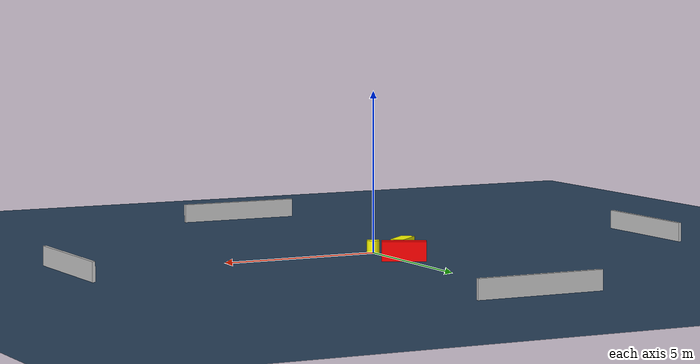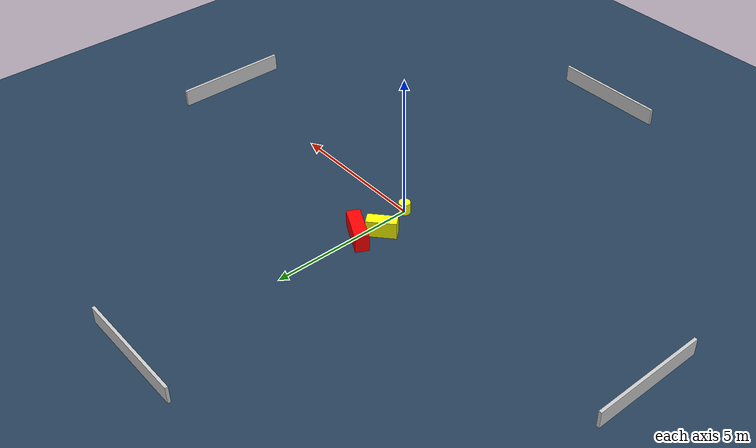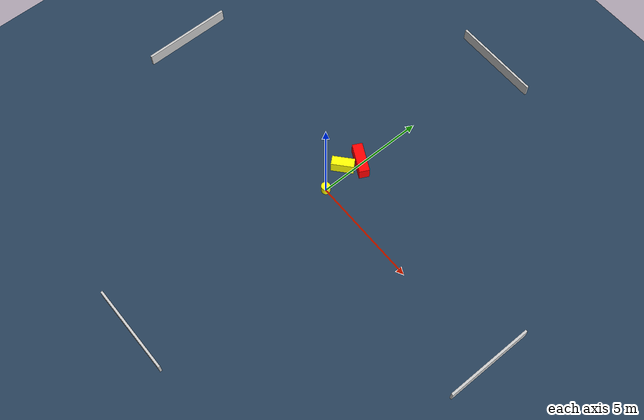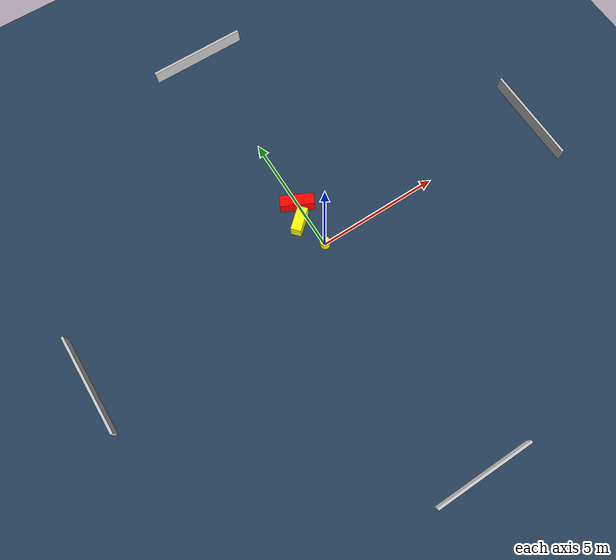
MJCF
<?xml version="1.0" ?>
<mujoco model="generated_environment">
  <option timestep="0.01" integrator="RK4" cone="elliptic"/>
  <default>
    <geom density="1"/>
  </default>
  <asset>
    <texture builtin="gradient" height="3072" name="skybox" rgb1="0.3 0.5 0.7" rgb2="0 0 0" type="skybox" width="512"/>
    <texture builtin="checker" height="300" name="groundplane" rgb1="0.2 0.3 0.4" rgb2="0.1 0.2 0.3" type="2d" width="300"/>
    <material name="groundplane" reflectance="0.2" texrepeat="5 5" texture="groundplane"/>
  </asset>
  <worldbody>
    <light dir="0 0 -1" directional="true" pos="0 0 1.5"/>
    <geom condim="3" friction="0.5 0.005 0.001" material="groundplane" name="floor" pos="0 0 0" size="0 0 0.05" type="plane"/>
    <body name="walls">
      <geom name="wall_1" condim="4" pos="-10.0 0.0 0.3" rgba="0.800000011920929 0.800000011920929 0.800000011920929 1.0" size="0.05 2.0 0.3" type="box"/>
      <geom name="wall_2" condim="4" pos="10.0 0.0 0.3" rgba="0.800000011920929 0.800000011920929 0.800000011920929 1.0" size="0.05 2.0 0.3" type="box"/>
      <geom name="wall_3" condim="4" pos="0.0 -10.0 0.3" rgba="0.800000011920929 0.800000011920929 0.800000011920929 1.0" size="2.0 0.05 0.3" type="box"/>
      <geom name="wall_4" condim="4" pos="0.0 10.0 0.3" rgba="0.800000011920929 0.800000011920929 0.800000011920929 1.0" size="2.0 0.05 0.3" type="box"/>
    </body>
    <body name="robot">
      <joint name="joint_x" type="slide" pos="0 0 0" axis="1 0 0"/>
      <joint name="joint_y" type="slide" pos="0 0 0" axis="0 1 0"/>
      <geom name="robot" type="cylinder" pos="0.0 0.0 0.2" size="0.2 0.2 0.0" mass="5.0" friction="1.0 0.005 0.0001" condim="4" rgba="1.0 1.0 0.0 1.0"/>
    </body>
    <body name="obstacle_1_movable">
      <geom name="obstacle_1_movable" condim="4" pos="-0.363111999123786 1.253146811122486 0.3" euler="0 0 221.42639030055597" friction="0.0 0.005 0.001" rgba="1.0 1.0 0.0 1.0" size="0.4993451856209538 0.20701090801328306 0.3" type="box" mass="0.1"/>
      <joint type="free"/>
    </body>
    <body name="obstacle_2_static">
      <geom name="obstacle_2_static" condim="4" pos="-0.028200842857964002 1.9694401042762917 0.3" euler="0 0 153.28686284573703" friction="0.0 0.005 0.001" rgba="1.0 0.0 0.0 1.0" size="0.6765287090507797 0.22857939818055525 0.3" type="box"/>
    </body>
  </worldbody>
  <actuator>
    <motor name="actuator_x" joint="joint_x" gear="1" ctrlrange="-1 1"/>
    <motor name="actuator_y" joint="joint_y" gear="1" ctrlrange="-1 1"/>
  </actuator>
</mujoco>
